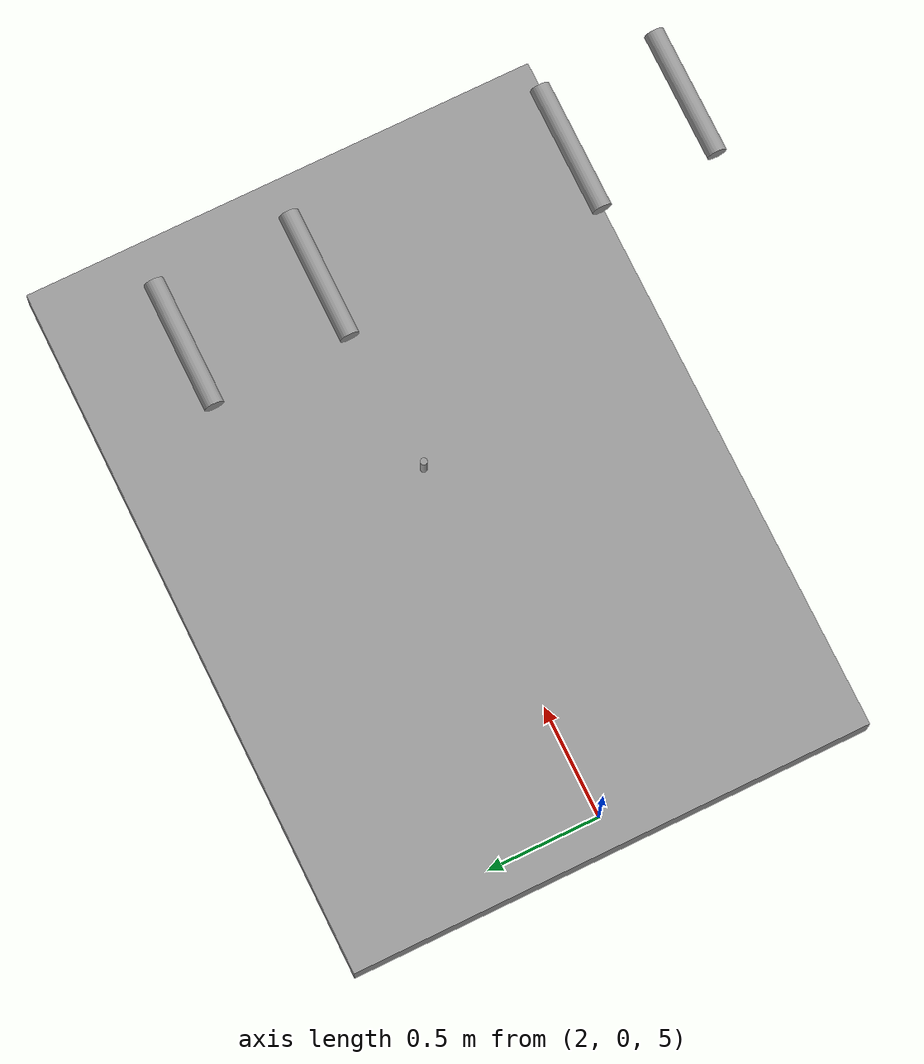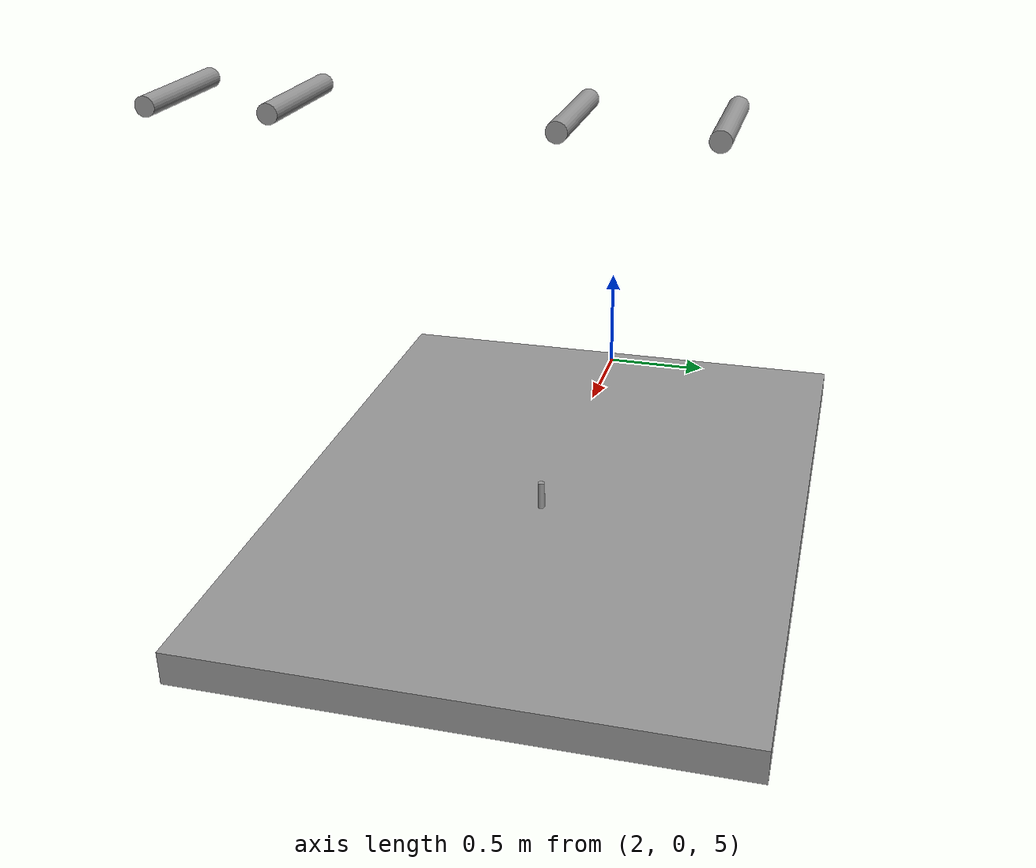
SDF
<?xml version='1.0'?>
<sdf version='1.7'>
  <model name='pegboard'>
    <link name='link_0'>
      <inertial>
        <mass>1.08943</mass>
        <inertia>
          <ixx>0.493561</ixx>
          <ixy>0</ixy>
          <ixz>0</ixz>
          <iyy>0.900537</iyy>
          <iyz>0</iyz>
          <izz>1.39007</izz>
        </inertia>
        <pose>0 0 0 0 -0 0</pose>
      </inertial>
      <pose>0 0 0.6751 0 0 0</pose>
      <gravity>1</gravity>
      <self_collide>0</self_collide>
      <kinematic>0</kinematic>
      <enable_wind>0</enable_wind>
      <visual name='visual'>
        <pose>0 0 0 0 -0 0</pose>
        <geometry>
          <box>
            <size>3.14598 2.32688 0.148979</size>
          </box>
        </geometry>
        <material>
          <lighting>1</lighting>
          <script>
            <uri>file://media/materials/scripts/gazebo.material</uri>
            <name>Gazebo/Grey</name>
          </script>
          <shader type='pixel'/>
          <emissive>0 0 0 1</emissive>
        </material>
        <transparency>0</transparency>
        <cast_shadows>1</cast_shadows>
      </visual>
      <collision name='collision'>
        <laser_retro>0</laser_retro>
        <max_contacts>10</max_contacts>
        <pose>0 0 0 0 -0 0</pose>
        <geometry>
          <box>
            <size>3.14598 2.32688 0.148979</size>
          </box>
        </geometry>
        <surface>
          <friction>
            <ode>
              <mu>1</mu>
              <mu2>1</mu2>
              <fdir1>0 0 0</fdir1>
              <slip1>0</slip1>
              <slip2>0</slip2>
            </ode>
            <torsional>
              <coefficient>1</coefficient>
              <patch_radius>0</patch_radius>
              <surface_radius>0</surface_radius>
              <use_patch_radius>1</use_patch_radius>
              <ode>
                <slip>0</slip>
              </ode>
            </torsional>
          </friction>
          <bounce>
            <restitution_coefficient>0</restitution_coefficient>
            <threshold>1e+06</threshold>
          </bounce>
          <contact>
            <collide_without_contact>0</collide_without_contact>
            <collide_without_contact_bitmask>1</collide_without_contact_bitmask>
            <collide_bitmask>1</collide_bitmask>
            <ode>
              <soft_cfm>0</soft_cfm>
              <soft_erp>0.2</soft_erp>
              <kp>1e+13</kp>
              <kd>1</kd>
              <max_vel>0.01</max_vel>
              <min_depth>0</min_depth>
            </ode>
            <bullet>
              <split_impulse>1</split_impulse>
              <split_impulse_penetration_threshold>-0.01</split_impulse_penetration_threshold>
              <soft_cfm>0</soft_cfm>
              <soft_erp>0.2</soft_erp>
              <kp>1e+13</kp>
              <kd>1</kd>
            </bullet>
          </contact>
        </surface>
      </collision>
    </link>
    <link name='link_1_clone_clone'>
      <inertial>
        <mass>0.00330483</mass>
        <inertia>
          <ixx>7.76052e-05</ixx>
          <ixy>0</ixy>
          <ixz>0</ixz>
          <iyy>7.76052e-05</iyy>
          <iyz>0</iyz>
          <izz>2.58711e-06</izz>
        </inertia>
        <pose>0 0 0 0 -0 0</pose>
      </inertial>
      <pose>0.18 0 0.8151 0 0 0</pose>
      <self_collide>0</self_collide>
      <enable_wind>0</enable_wind>
      <kinematic>0</kinematic>
      <visual name='visual'>
        <pose>0 0 0 0 -0 0</pose>
        <geometry>
          <cylinder>
            <radius>0.0155683</radius>
            <length>0.126394</length>
          </cylinder>
        </geometry>
        <material>
          <lighting>1</lighting>
          <script>
            <uri>file://media/materials/scripts/gazebo.material</uri>
            <name>Gazebo/Grey</name>
          </script>
          <shader type='pixel'/>
          <emissive>0 0 0 1</emissive>
        </material>
        <transparency>0</transparency>
        <cast_shadows>1</cast_shadows>
      </visual>
      <collision name='collision'>
        <laser_retro>0</laser_retro>
        <max_contacts>10</max_contacts>
        <pose>0 0 0 0 -0 0</pose>
        <geometry>
          <cylinder>
            <radius>0.015568</radius>
            <length>0.126394</length>
          </cylinder>
        </geometry>
        <surface>
          <friction>
            <ode>
              <mu>1</mu>
              <mu2>1</mu2>
              <fdir1>0 0 0</fdir1>
              <slip1>0</slip1>
              <slip2>0</slip2>
            </ode>
            <torsional>
              <coefficient>1</coefficient>
              <patch_radius>0</patch_radius>
              <surface_radius>0</surface_radius>
              <use_patch_radius>1</use_patch_radius>
              <ode>
                <slip>0</slip>
              </ode>
            </torsional>
          </friction>
          <bounce>
            <restitution_coefficient>0</restitution_coefficient>
            <threshold>1e+06</threshold>
          </bounce>
          <contact>
            <collide_without_contact>0</collide_without_contact>
            <collide_without_contact_bitmask>1</collide_without_contact_bitmask>
            <collide_bitmask>1</collide_bitmask>
            <ode>
              <soft_cfm>0</soft_cfm>
              <soft_erp>0.2</soft_erp>
              <kp>1e+13</kp>
              <kd>1</kd>
              <max_vel>0.01</max_vel>
              <min_depth>0</min_depth>
            </ode>
            <bullet>
              <split_impulse>1</split_impulse>
              <split_impulse_penetration_threshold>-0.01</split_impulse_penetration_threshold>
              <soft_cfm>0</soft_cfm>
              <soft_erp>0.2</soft_erp>
              <kp>1e+13</kp>
              <kd>1</kd>
            </bullet>
          </contact>
        </surface>
      </collision>
    </link>
    <link name='link_1_clone_clone_0'>
      <inertial>
        <mass>0.00330483</mass>
        <inertia>
          <ixx>7.76052e-05</ixx>
          <ixy>0</ixy>
          <ixz>0</ixz>
          <iyy>7.76052e-05</iyy>
          <iyz>0</iyz>
          <izz>2.58711e-06</izz>
        </inertia>
        <pose>0 0 0 0 -0 0</pose>
      </inertial>
      <pose>0.585378 0.225737 2.6547 3.14159 -1.55754 3.14159</pose>
      <self_collide>0</self_collide>
      <enable_wind>0</enable_wind>
      <kinematic>0</kinematic>
      <visual name='visual'>
        <pose>0 0 0 0 -0 0</pose>
        <geometry>
          <cylinder>
            <radius>0.0395683</radius>
            <length>0.526394</length>
          </cylinder>
        </geometry>
        <material>
          <lighting>1</lighting>
          <script>
            <uri>file://media/materials/scripts/gazebo.material</uri>
            <name>Gazebo/Grey</name>
          </script>
          <shader type='pixel'/>
          <emissive>0 0 0 1</emissive>
        </material>
        <transparency>0</transparency>
        <cast_shadows>1</cast_shadows>
      </visual>
      <collision name='collision'>
        <laser_retro>0</laser_retro>
        <max_contacts>10</max_contacts>
        <pose>0 0 0 0 -0 0</pose>
        <geometry>
          <cylinder>
            <radius>0.039568</radius>
            <length>0.526394</length>
          </cylinder>
        </geometry>
        <surface>
          <friction>
            <ode>
              <mu>1</mu>
              <mu2>1</mu2>
              <fdir1>0 0 0</fdir1>
              <slip1>0</slip1>
              <slip2>0</slip2>
            </ode>
            <torsional>
              <coefficient>1</coefficient>
              <patch_radius>0</patch_radius>
              <surface_radius>0</surface_radius>
              <use_patch_radius>1</use_patch_radius>
              <ode>
                <slip>0</slip>
              </ode>
            </torsional>
          </friction>
          <bounce>
            <restitution_coefficient>0</restitution_coefficient>
            <threshold>1e+06</threshold>
          </bounce>
          <contact>
            <collide_without_contact>0</collide_without_contact>
            <collide_without_contact_bitmask>1</collide_without_contact_bitmask>
            <collide_bitmask>1</collide_bitmask>
            <ode>
              <soft_cfm>0</soft_cfm>
              <soft_erp>0.2</soft_erp>
              <kp>1e+13</kp>
              <kd>1</kd>
              <max_vel>0.01</max_vel>
              <min_depth>0</min_depth>
            </ode>
            <bullet>
              <split_impulse>1</split_impulse>
              <split_impulse_penetration_threshold>-0.01</split_impulse_penetration_threshold>
              <soft_cfm>0</soft_cfm>
              <soft_erp>0.2</soft_erp>
              <kp>1e+13</kp>
              <kd>1</kd>
            </bullet>
          </contact>
        </surface>
      </collision>
    </link>
    <link name='link_1_clone_clone_1'>
      <inertial>
        <mass>0.00330483</mass>
        <inertia>
          <ixx>7.76052e-05</ixx>
          <ixy>0</ixy>
          <ixz>0</ixz>
          <iyy>7.76052e-05</iyy>
          <iyz>0</iyz>
          <izz>2.58711e-06</izz>
        </inertia>
        <pose>0 0 0 0 -0 0</pose>
      </inertial>
      <pose>0.565286 0.787069 2.65373 3.14159 -1.55754 3.14159</pose>
      <self_collide>0</self_collide>
      <enable_wind>0</enable_wind>
      <kinematic>0</kinematic>
      <visual name='visual'>
        <pose>0 0 0 0 -0 0</pose>
        <geometry>
          <cylinder>
            <radius>0.0395683</radius>
            <length>0.526394</length>
          </cylinder>
        </geometry>
        <material>
          <lighting>1</lighting>
          <script>
            <uri>file://media/materials/scripts/gazebo.material</uri>
            <name>Gazebo/Grey</name>
          </script>
          <shader type='pixel'/>
          <emissive>0 0 0 1</emissive>
        </material>
        <transparency>0</transparency>
        <cast_shadows>1</cast_shadows>
      </visual>
      <collision name='collision'>
        <laser_retro>0</laser_retro>
        <max_contacts>10</max_contacts>
        <pose>0 0 0 0 -0 0</pose>
        <geometry>
          <cylinder>
            <radius>0.039568</radius>
            <length>0.526394</length>
          </cylinder>
        </geometry>
        <surface>
          <friction>
            <ode>
              <mu>1</mu>
              <mu2>1</mu2>
              <fdir1>0 0 0</fdir1>
              <slip1>0</slip1>
              <slip2>0</slip2>
            </ode>
            <torsional>
              <coefficient>1</coefficient>
              <patch_radius>0</patch_radius>
              <surface_radius>0</surface_radius>
              <use_patch_radius>1</use_patch_radius>
              <ode>
                <slip>0</slip>
              </ode>
            </torsional>
          </friction>
          <bounce>
            <restitution_coefficient>0</restitution_coefficient>
            <threshold>1e+06</threshold>
          </bounce>
          <contact>
            <collide_without_contact>0</collide_without_contact>
            <collide_without_contact_bitmask>1</collide_without_contact_bitmask>
            <collide_bitmask>1</collide_bitmask>
            <ode>
              <soft_cfm>0</soft_cfm>
              <soft_erp>0.2</soft_erp>
              <kp>1e+13</kp>
              <kd>1</kd>
              <max_vel>0.01</max_vel>
              <min_depth>0</min_depth>
            </ode>
            <bullet>
              <split_impulse>1</split_impulse>
              <split_impulse_penetration_threshold>-0.01</split_impulse_penetration_threshold>
              <soft_cfm>0</soft_cfm>
              <soft_erp>0.2</soft_erp>
              <kp>1e+13</kp>
              <kd>1</kd>
            </bullet>
          </contact>
        </surface>
      </collision>
    </link>
    <link name='link_1_clone_clone_clone'>
      <inertial>
        <mass>0.00330483</mass>
        <inertia>
          <ixx>7.76052e-05</ixx>
          <ixy>0</ixy>
          <ixz>0</ixz>
          <iyy>7.76052e-05</iyy>
          <iyz>0</iyz>
          <izz>2.58711e-06</izz>
        </inertia>
        <pose>0 0 0 0 -0 0</pose>
      </inertial>
      <pose>0.616654 -0.829086 2.66272 3.14159 -1.55754 3.14159</pose>
      <self_collide>0</self_collide>
      <enable_wind>0</enable_wind>
      <kinematic>0</kinematic>
      <visual name='visual'>
        <pose>0 0 0 0 -0 0</pose>
        <geometry>
          <cylinder>
            <radius>0.0395683</radius>
            <length>0.526394</length>
          </cylinder>
        </geometry>
        <material>
          <lighting>1</lighting>
          <script>
            <uri>file://media/materials/scripts/gazebo.material</uri>
            <name>Gazebo/Grey</name>
          </script>
          <shader type='pixel'/>
          <emissive>0 0 0 1</emissive>
        </material>
        <transparency>0</transparency>
        <cast_shadows>1</cast_shadows>
      </visual>
      <collision name='collision'>
        <laser_retro>0</laser_retro>
        <max_contacts>10</max_contacts>
        <pose>0 0 0 0 -0 0</pose>
        <geometry>
          <cylinder>
            <radius>0.039568</radius>
            <length>0.526394</length>
          </cylinder>
        </geometry>
        <surface>
          <friction>
            <ode>
              <mu>1</mu>
              <mu2>1</mu2>
              <fdir1>0 0 0</fdir1>
              <slip1>0</slip1>
              <slip2>0</slip2>
            </ode>
            <torsional>
              <coefficient>1</coefficient>
              <patch_radius>0</patch_radius>
              <surface_radius>0</surface_radius>
              <use_patch_radius>1</use_patch_radius>
              <ode>
                <slip>0</slip>
              </ode>
            </torsional>
          </friction>
          <bounce>
            <restitution_coefficient>0</restitution_coefficient>
            <threshold>1e+06</threshold>
          </bounce>
          <contact>
            <collide_without_contact>0</collide_without_contact>
            <collide_without_contact_bitmask>1</collide_without_contact_bitmask>
            <collide_bitmask>1</collide_bitmask>
            <ode>
              <soft_cfm>0</soft_cfm>
              <soft_erp>0.2</soft_erp>
              <kp>1e+13</kp>
              <kd>1</kd>
              <max_vel>0.01</max_vel>
              <min_depth>0</min_depth>
            </ode>
            <bullet>
              <split_impulse>1</split_impulse>
              <split_impulse_penetration_threshold>-0.01</split_impulse_penetration_threshold>
              <soft_cfm>0</soft_cfm>
              <soft_erp>0.2</soft_erp>
              <kp>1e+13</kp>
              <kd>1</kd>
            </bullet>
          </contact>
        </surface>
      </collision>
    </link>
    <link name='link_1_clone_clone_clone_0'>
      <inertial>
        <mass>0.00330483</mass>
        <inertia>
          <ixx>7.761e-05</ixx>
          <ixy>0</ixy>
          <ixz>0</ixz>
          <iyy>7.761e-05</iyy>
          <iyz>0</iyz>
          <izz>2.59e-06</izz>
        </inertia>
        <pose>0 0 0 0 -0 0</pose>
      </inertial>
      <pose>0.62113 -1.30903 2.66272 3.14159 -1.55754 3.14159</pose>
      <gravity>1</gravity>
      <self_collide>0</self_collide>
      <kinematic>0</kinematic>
      <enable_wind>0</enable_wind>
      <visual name='visual'>
        <pose>0 0 0 0 -0 0</pose>
        <geometry>
          <cylinder>
            <radius>0.0395683</radius>
            <length>0.526394</length>
          </cylinder>
        </geometry>
        <material>
          <lighting>1</lighting>
          <script>
            <uri>file://media/materials/scripts/gazebo.material</uri>
            <name>Gazebo/Grey</name>
          </script>
          <shader type='pixel'/>
          <emissive>0 0 0 1</emissive>
        </material>
        <transparency>0</transparency>
        <cast_shadows>1</cast_shadows>
      </visual>
      <collision name='collision'>
        <laser_retro>0</laser_retro>
        <max_contacts>10</max_contacts>
        <pose>0 0 0 0 -0 0</pose>
        <geometry>
          <cylinder>
            <radius>0.039568</radius>
            <length>0.526394</length>
          </cylinder>
        </geometry>
        <surface>
          <friction>
            <ode>
              <mu>1</mu>
              <mu2>1</mu2>
              <fdir1>0 0 0</fdir1>
              <slip1>0</slip1>
              <slip2>0</slip2>
            </ode>
            <torsional>
              <coefficient>1</coefficient>
              <patch_radius>0</patch_radius>
              <surface_radius>0</surface_radius>
              <use_patch_radius>1</use_patch_radius>
              <ode>
                <slip>0</slip>
              </ode>
            </torsional>
          </friction>
          <bounce>
            <restitution_coefficient>0</restitution_coefficient>
            <threshold>1e+06</threshold>
          </bounce>
          <contact>
            <collide_without_contact>0</collide_without_contact>
            <collide_without_contact_bitmask>1</collide_without_contact_bitmask>
            <collide_bitmask>1</collide_bitmask>
            <ode>
              <soft_cfm>0</soft_cfm>
              <soft_erp>0.2</soft_erp>
              <kp>1e+13</kp>
              <kd>1</kd>
              <max_vel>0.01</max_vel>
              <min_depth>0</min_depth>
            </ode>
            <bullet>
              <split_impulse>1</split_impulse>
              <split_impulse_penetration_threshold>-0.01</split_impulse_penetration_threshold>
              <soft_cfm>0</soft_cfm>
              <soft_erp>0.2</soft_erp>
              <kp>1e+13</kp>
              <kd>1</kd>
            </bullet>
          </contact>
        </surface>
      </collision>
    </link>
    <joint name='link_0_JOINT_0' type='fixed'>
      <parent>link_0</parent>
      <child>link_1_clone_clone</child>
      <pose>0 0 0 0 -0 0</pose>
      <physics>
        <ode>
          <limit>
            <cfm>0</cfm>
            <erp>0.2</erp>
          </limit>
          <suspension>
            <cfm>0</cfm>
            <erp>0.2</erp>
          </suspension>
        </ode>
      </physics>
    </joint>
    <joint name='link_0_JOINT_1' type='fixed'>
      <parent>link_0</parent>
      <child>link_1_clone_clone_clone</child>
      <pose>0 0 0 0 -0 0</pose>
      <physics>
        <ode>
          <limit>
            <cfm>0</cfm>
            <erp>0.2</erp>
          </limit>
          <suspension>
            <cfm>0</cfm>
            <erp>0.2</erp>
          </suspension>
        </ode>
      </physics>
    </joint>
    <joint name='link_0_JOINT_2' type='fixed'>
      <parent>link_0</parent>
      <child>link_1_clone_clone_clone_0</child>
      <pose>0 0 0 0 -0 0</pose>
      <physics>
        <ode>
          <limit>
            <cfm>0</cfm>
            <erp>0.2</erp>
          </limit>
          <suspension>
            <cfm>0</cfm>
            <erp>0.2</erp>
          </suspension>
        </ode>
      </physics>
    </joint>
    <joint name='link_0_JOINT_3' type='fixed'>
      <parent>link_0</parent>
      <child>link_1_clone_clone_0</child>
      <pose>0 0 0 0 -0 0</pose>
      <physics>
        <ode>
          <limit>
            <cfm>0</cfm>
            <erp>0.2</erp>
          </limit>
          <suspension>
            <cfm>0</cfm>
            <erp>0.2</erp>
          </suspension>
        </ode>
      </physics>
    </joint>
    <joint name='link_0_JOINT_4' type='fixed'>
      <parent>link_0</parent>
      <child>link_1_clone_clone_1</child>
      <pose>0 0 0 0 -0 0</pose>
      <physics>
        <ode>
          <limit>
            <cfm>0</cfm>
            <erp>0.2</erp>
          </limit>
          <suspension>
            <cfm>0</cfm>
            <erp>0.2</erp>
          </suspension>
        </ode>
      </physics>
    </joint>
    <static>1</static>
    <allow_auto_disable>1</allow_auto_disable>
    <pose>3.4375 0 4.229375 0 0 0</pose>
  </model>
</sdf>
